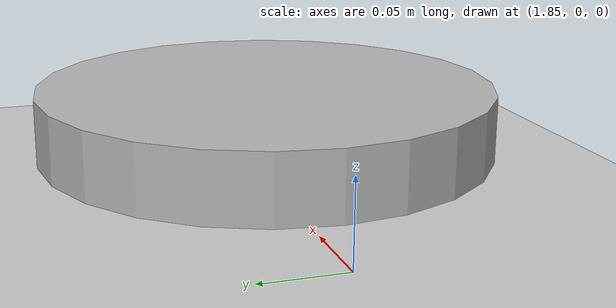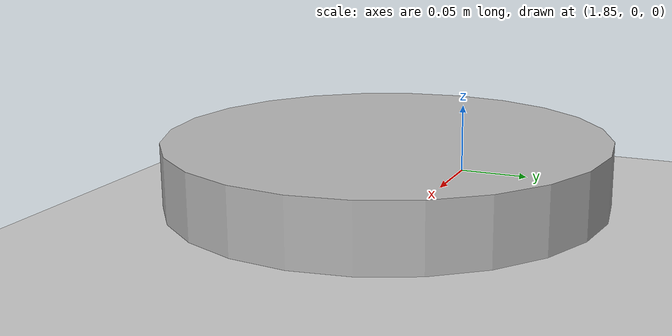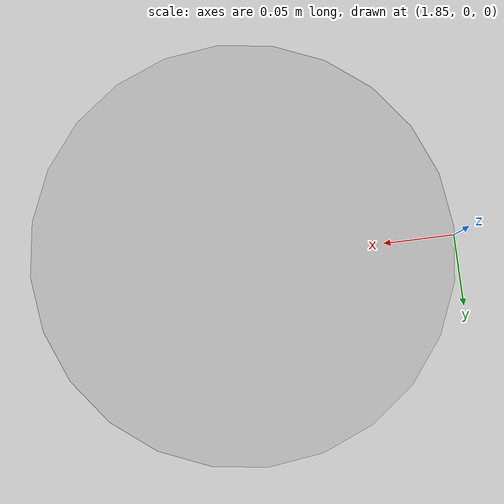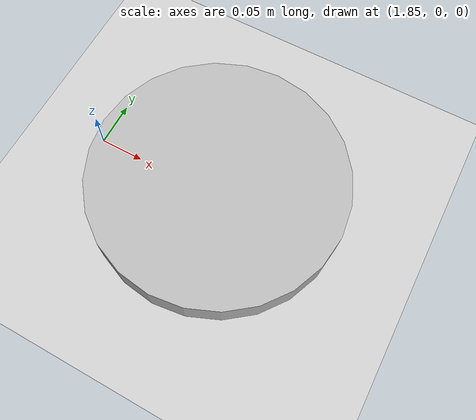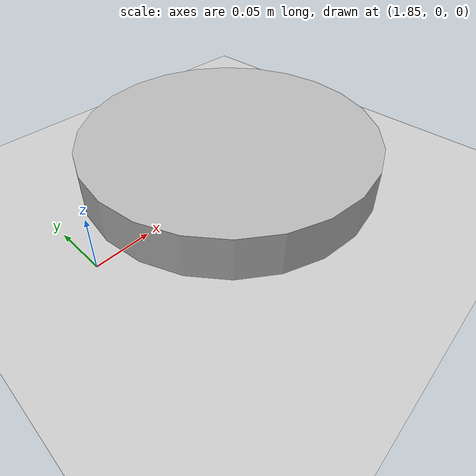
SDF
<?xml version="1.0" ?>
<sdf version="1.6">
  <world name="default">

    <!-- Ground plane -->
    <include>
      <uri>model://ground_plane</uri>
    </include>

    <!-- Sun -->
    <include>
      <uri>model://sun</uri>
    </include>

    <model name="cylinder">
    <static>true</static>
    <pose>2 0 0.04 0 0 0</pose>
    <link name="link">
        <collision name="collision">
        <geometry>
            <cylinder>
            <radius>0.1375</radius>
            <length>0.04</length>
            </cylinder>
        </geometry>
        </collision>
        <visual name="visual">
        <geometry>
            <cylinder>
            <radius>0.1375</radius>
            <length>0.04</length>
            </cylinder>
        </geometry>
        </visual>
    </link>
    </model>

  </world>
</sdf>
